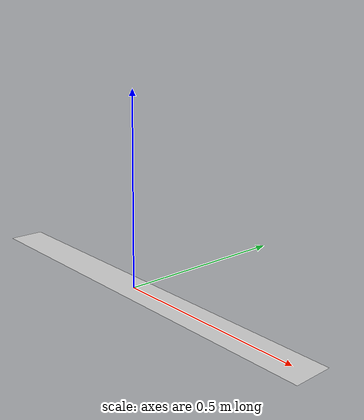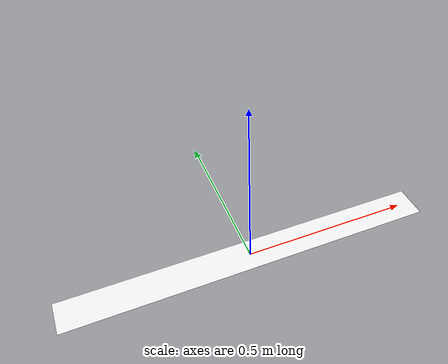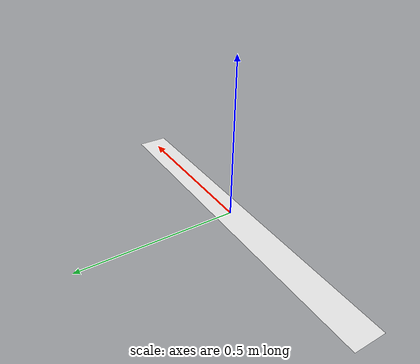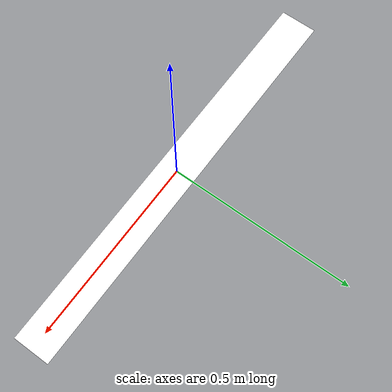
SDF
<?xml version='1.0'?>
<sdf version='1.6'>
  <model name='roadmark_mid'>
    <link name='link'>
      <pose frame=''>0 0 0.0001 0 -0 0</pose>
      <inertial>
        <mass>0.0807885</mass>
        <inertia>
          <ixx>3.572e-05</ixx>
          <ixy>0</ixy>
          <ixz>0</ixz>
          <iyy>0.00838261</iyy>
          <iyz>0</iyz>
          <izz>0.00841742</izz>
        </inertia>
        <pose frame=''>0 0 0 0 -0 0</pose>
      </inertial>
      <self_collide>0</self_collide>
      <kinematic>0</kinematic>
      <gravity>0</gravity>
      <visual name='visual'>
        <geometry>
          <box>
            <size>1.1 0.1 1e-06</size>
          </box>
        </geometry>
        <material>
          <script>
            <name>Gazebo/White</name>
            <uri>file://media/materials/scripts/gazebo.material</uri>
          </script>
          <shader type='pixel'>
            <normal_map>__default__</normal_map>
          </shader>
          <ambient>1 1 1 1</ambient>
          <diffuse>0.7 0.7 0.7 0</diffuse>
          <specular>0.01 0.01 0.01 0</specular>
          <emissive>0 0 0 1</emissive>
          <lighting>0</lighting>
        </material>
        <pose frame=''>0 0 0 0 -0 0</pose>
        <transparency>0</transparency>
        <cast_shadows>1</cast_shadows>
      </visual>
    </link>
    <static>0</static>
    <allow_auto_disable>1</allow_auto_disable>
  </model>
</sdf>
